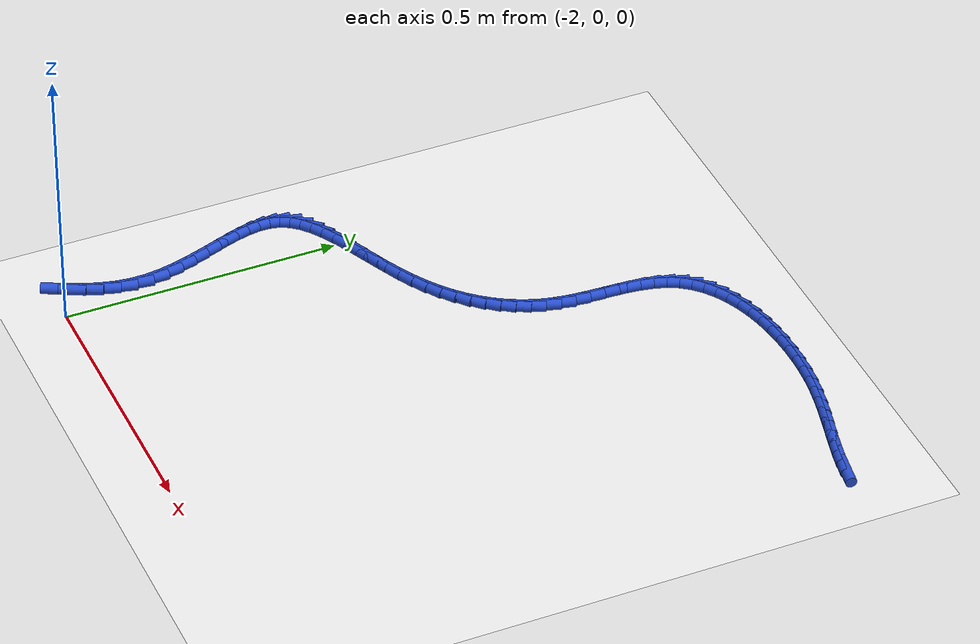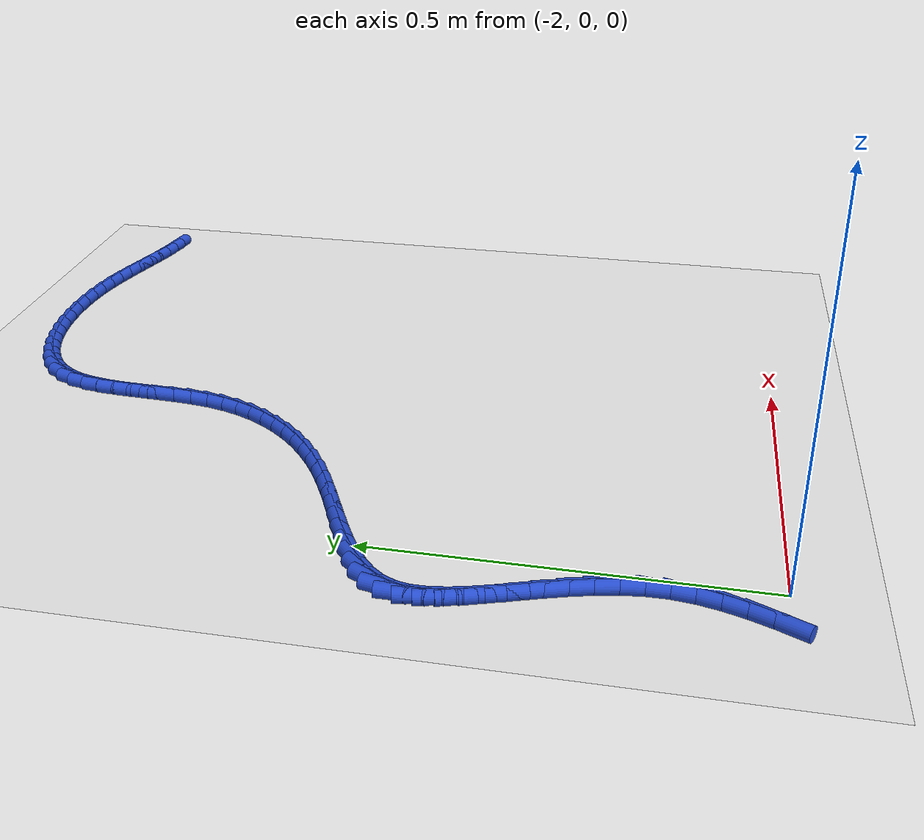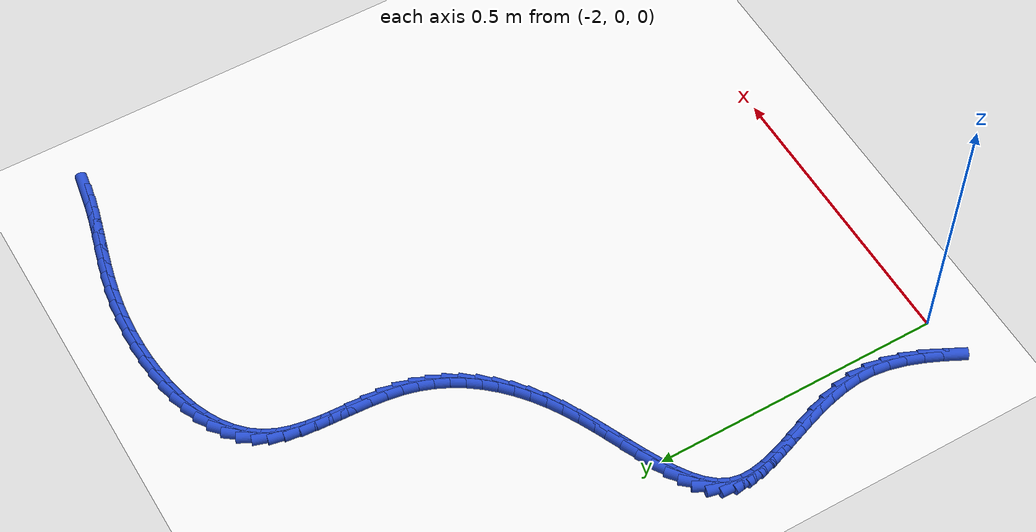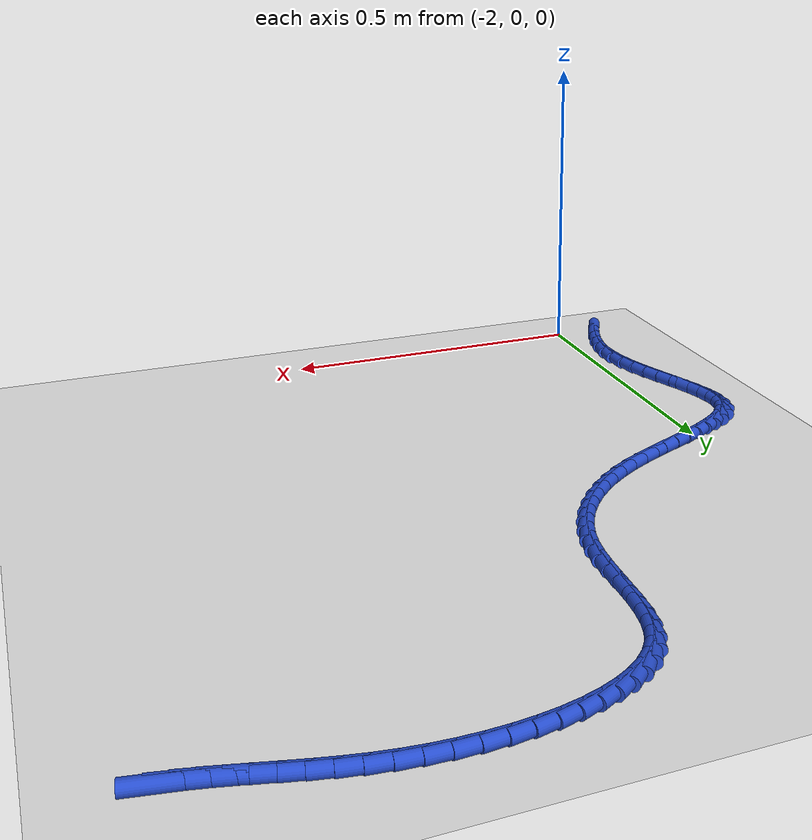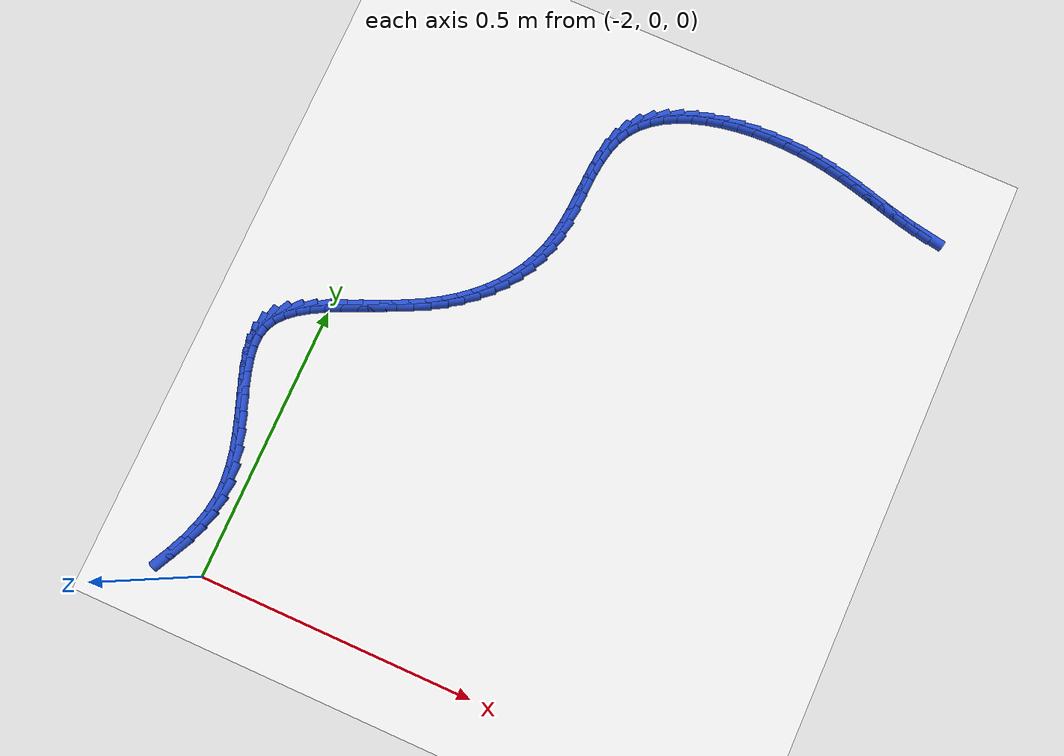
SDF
<sdf version="1.6">
 <world name="default">
  <model name="ground_plane">
   <static>1</static>
   <link name="link">
    <collision name="collision">
     <geometry><plane><normal>0 0 1</normal><size>100 100</size></plane></geometry>
     <surface><friction><ode><mu>100</mu><mu2>50</mu2></ode></friction></surface>
    </collision>
    <visual name="visual">
     <cast_shadows>0</cast_shadows>
     <geometry><plane><normal>0 0 1</normal><size>100 100</size></plane></geometry>
     <material>
      <script><uri>file://media/materials/scripts/gazebo.material</uri><name>Gazebo/WhiteGlow</name></script>
     </material>
    </visual>
   </link>
  </model>
  <model name="line">
   <link name="link_67">
    <pose>-1.1042383645350953 1.0488530100935698 0.01 0 1.57 -0.17428963430545558</pose>
    <collision name="collision">
     <geometry><cylinder><radius>0.01</radius><length>0.08</length></cylinder></geometry>
    </collision>
    <visual name="visual">
     <material>
      <script><name>Gazebo/Blue</name><uri>file://media/materials/scripts/gazebo.material</uri></script>
     </material>
     <geometry><cylinder><radius>0.01</radius><length>0.08</length></cylinder></geometry>
    </visual>
   </link>
   <link name="link_68">
    <pose>-1.1283796126108847 1.05310370778175 0.01 0 1.57 -0.21523904400579183</pose>
    <collision name="collision">
     <geometry><cylinder><radius>0.01</radius><length>0.08</length></cylinder></geometry>
    </collision>
    <visual name="visual">
     <material>
      <script><name>Gazebo/Blue</name><uri>file://media/materials/scripts/gazebo.material</uri></script>
     </material>
     <geometry><cylinder><radius>0.01</radius><length>0.08</length></cylinder></geometry>
    </visual>
   </link>
   <link name="link_69">
    <pose>-1.152446599690873 1.0583653689491557 0.01 0 1.57 -0.24287902745166387</pose>
    <collision name="collision">
     <geometry><cylinder><radius>0.01</radius><length>0.08</length></cylinder></geometry>
    </collision>
    <visual name="visual">
     <material>
      <script><name>Gazebo/Blue</name><uri>file://media/materials/scripts/gazebo.material</uri></script>
     </material>
     <geometry><cylinder><radius>0.01</radius><length>0.08</length></cylinder></geometry>
    </visual>
   </link>
   <link name="link_70">
    <pose>-1.1765841517220461 1.0643459375587025 0.01 0 1.57 -0.25727574184465374</pose>
    <collision name="collision">
     <geometry><cylinder><radius>0.01</radius><length>0.08</length></cylinder></geometry>
    </collision>
    <visual name="visual">
     <material>
      <script><name>Gazebo/Blue</name><uri>file://media/materials/scripts/gazebo.material</uri></script>
     </material>
     <geometry><cylinder><radius>0.01</radius><length>0.08</length></cylinder></geometry>
    </visual>
   </link>
   <link name="link_71">
    <pose>-1.2009370946513893 1.0707533575733053 0.01 0 1.57 -0.2587896713241554</pose>
    <collision name="collision">
     <geometry><cylinder><radius>0.01</radius><length>0.08</length></cylinder></geometry>
    </collision>
    <visual name="visual">
     <material>
      <script><name>Gazebo/Blue</name><uri>file://media/materials/scripts/gazebo.material</uri></script>
     </material>
     <geometry><cylinder><radius>0.01</radius><length>0.08</length></cylinder></geometry>
    </visual>
   </link>
   <link name="link_72">
    <pose>-1.2256502544258876 1.0772955729558782 0.01 0 1.57 -0.24797719030441243</pose>
    <collision name="collision">
     <geometry><cylinder><radius>0.01</radius><length>0.08</length></cylinder></geometry>
    </collision>
    <visual name="visual">
     <material>
      <script><name>Gazebo/Blue</name><uri>file://media/materials/scripts/gazebo.material</uri></script>
     </material>
     <geometry><cylinder><radius>0.01</radius><length>0.08</length></cylinder></geometry>
    </visual>
   </link>
   <link name="link_73">
    <pose>-1.2508684569925261 1.0836805276693373 0.01 0 1.57 -0.22555363552997876</pose>
    <collision name="collision">
     <geometry><cylinder><radius>0.01</radius><length>0.08</length></cylinder></geometry>
    </collision>
    <visual name="visual">
     <material>
      <script><name>Gazebo/Blue</name><uri>file://media/materials/scripts/gazebo.material</uri></script>
     </material>
     <geometry><cylinder><radius>0.01</radius><length>0.08</length></cylinder></geometry>
    </visual>
   </link>
   <link name="link_74">
    <pose>-1.276736528298291 1.0896161656765975 0.01 0 1.57 -0.19240354889719638</pose>
    <collision name="collision">
     <geometry><cylinder><radius>0.01</radius><length>0.08</length></cylinder></geometry>
    </collision>
    <visual name="visual">
     <material>
      <script><name>Gazebo/Blue</name><uri>file://media/materials/scripts/gazebo.material</uri></script>
     </material>
     <geometry><cylinder><radius>0.01</radius><length>0.08</length></cylinder></geometry>
    </visual>
   </link>
   <link name="link_75">
    <pose>-1.3033992942901667 1.0948104309405728 0.01 0 1.57 -0.14961987255452625</pose>
    <collision name="collision">
     <geometry><cylinder><radius>0.01</radius><length>0.08</length></cylinder></geometry>
    </collision>
    <visual name="visual">
     <material>
      <script><name>Gazebo/Blue</name><uri>file://media/materials/scripts/gazebo.material</uri></script>
     </material>
     <geometry><cylinder><radius>0.01</radius><length>0.08</length></cylinder></geometry>
    </visual>
   </link>
   <link name="link_76">
    <pose>-1.3310013963701117 1.098971349292782 0.01 0 1.57 -0.1007498563239477</pose>
    <collision name="collision">
     <geometry><cylinder><radius>0.01</radius><length>0.08</length></cylinder></geometry>
    </collision>
    <visual name="visual">
     <material>
      <script><name>Gazebo/Blue</name><uri>file://media/materials/scripts/gazebo.material</uri></script>
     </material>
     <geometry><cylinder><radius>0.01</radius><length>0.08</length></cylinder></geometry>
    </visual>
   </link>
   <link name="link_77">
    <pose>-1.3595693598524987 1.1018593456960684 0.01 0 1.57 -0.05186217491209351</pose>
    <collision name="collision">
     <geometry><cylinder><radius>0.01</radius><length>0.08</length></cylinder></geometry>
    </collision>
    <visual name="visual">
     <material>
      <script><name>Gazebo/Blue</name><uri>file://media/materials/scripts/gazebo.material</uri></script>
     </material>
     <geometry><cylinder><radius>0.01</radius><length>0.08</length></cylinder></geometry>
    </visual>
   </link>
   <link name="link_78">
    <pose>-1.3888089631166414 1.103377136151818 0.01 0 1.57 -0.0025106530164531646</pose>
    <collision name="collision">
     <geometry><cylinder><radius>0.01</radius><length>0.08</length></cylinder></geometry>
    </collision>
    <visual name="visual">
     <material>
      <script><name>Gazebo/Blue</name><uri>file://media/materials/scripts/gazebo.material</uri></script>
     </material>
     <geometry><cylinder><radius>0.01</radius><length>0.08</length></cylinder></geometry>
    </visual>
   </link>
   <link name="link_79">
    <pose>-1.4183720597675147 1.103451358985552 0.01 0 1.57 0.04880287275235447</pose>
    <collision name="collision">
     <geometry><cylinder><radius>0.01</radius><length>0.08</length></cylinder></geometry>
    </collision>
    <visual name="visual">
     <material>
      <script><name>Gazebo/Blue</name><uri>file://media/materials/scripts/gazebo.material</uri></script>
     </material>
     <geometry><cylinder><radius>0.01</radius><length>0.08</length></cylinder></geometry>
    </visual>
   </link>
   <link name="link_80">
    <pose>-1.4479105034100908 1.1020086525227895 0.01 0 1.57 0.10361967306458716</pose>
    <collision name="collision">
     <geometry><cylinder><radius>0.01</radius><length>0.08</length></cylinder></geometry>
    </collision>
    <visual name="visual">
     <material>
      <script><name>Gazebo/Blue</name><uri>file://media/materials/scripts/gazebo.material</uri></script>
     </material>
     <geometry><cylinder><radius>0.01</radius><length>0.08</length></cylinder></geometry>
    </visual>
   </link>
   <link name="link_81">
    <pose>-1.4770761476493453 1.0989756550890493 0.01 0 1.57 0.16363869534880243</pose>
    <collision name="collision">
     <geometry><cylinder><radius>0.01</radius><length>0.08</length></cylinder></geometry>
    </collision>
    <visual name="visual">
     <material>
      <script><name>Gazebo/Blue</name><uri>file://media/materials/scripts/gazebo.material</uri></script>
     </material>
     <geometry><cylinder><radius>0.01</radius><length>0.08</length></cylinder></geometry>
    </visual>
   </link>
   <link name="link_82">
    <pose>-1.5055208460902505 1.0942790050098519 0.01 0 1.57 0.2308257009730837</pose>
    <collision name="collision">
     <geometry><cylinder><radius>0.01</radius><length>0.08</length></cylinder></geometry>
    </collision>
    <visual name="visual">
     <material>
      <script><name>Gazebo/Blue</name><uri>file://media/materials/scripts/gazebo.material</uri></script>
     </material>
     <geometry><cylinder><radius>0.01</radius><length>0.08</length></cylinder></geometry>
    </visual>
   </link>
   <link name="link_83">
    <pose>-1.5328964523377795 1.0878453406107158 0.01 0 1.57 0.307512563078737</pose>
    <collision name="collision">
     <geometry><cylinder><radius>0.01</radius><length>0.08</length></cylinder></geometry>
    </collision>
    <visual name="visual">
     <material>
      <script><name>Gazebo/Blue</name><uri>file://media/materials/scripts/gazebo.material</uri></script>
     </material>
     <geometry><cylinder><radius>0.01</radius><length>0.08</length></cylinder></geometry>
    </visual>
   </link>
   <link name="link_84">
    <pose>-1.558854819996907 1.0796013002171616 0.01 0 1.57 0.39645827041986353</pose>
    <collision name="collision">
     <geometry><cylinder><radius>0.01</radius><length>0.08</length></cylinder></geometry>
    </collision>
    <visual name="visual">
     <material>
      <script><name>Gazebo/Blue</name><uri>file://media/materials/scripts/gazebo.material</uri></script>
     </material>
     <geometry><cylinder><radius>0.01</radius><length>0.08</length></cylinder></geometry>
    </visual>
   </link>
   <link name="link_85">
    <pose>-1.5830478026726058 1.0694735221547085 0.01 0 1.57 0.5007955728534997</pose>
    <collision name="collision">
     <geometry><cylinder><radius>0.01</radius><length>0.08</length></cylinder></geometry>
    </collision>
    <visual name="visual">
     <material>
      <script><name>Gazebo/Blue</name><uri>file://media/materials/scripts/gazebo.material</uri></script>
     </material>
     <geometry><cylinder><radius>0.01</radius><length>0.08</length></cylinder></geometry>
    </visual>
   </link>
   <link name="link_86">
    <pose>-1.6051272539698491 1.0573886447488754 0.01 0 1.57 0.6237054487606671</pose>
    <collision name="collision">
     <geometry><cylinder><radius>0.01</radius><length>0.08</length></cylinder></geometry>
    </collision>
    <visual name="visual">
     <material>
      <script><name>Gazebo/Blue</name><uri>file://media/materials/scripts/gazebo.material</uri></script>
     </material>
     <geometry><cylinder><radius>0.01</radius><length>0.08</length></cylinder></geometry>
    </visual>
   </link>
   <link name="link_87">
    <pose>-1.6247450274936113 1.0432733063251824 0.01 0 1.57 0.7675726295533489</pose>
    <collision name="collision">
     <geometry><cylinder><radius>0.01</radius><length>0.08</length></cylinder></geometry>
    </collision>
    <visual name="visual">
     <material>
      <script><name>Gazebo/Blue</name><uri>file://media/materials/scripts/gazebo.material</uri></script>
     </material>
     <geometry><cylinder><radius>0.01</radius><length>0.08</length></cylinder></geometry>
    </visual>
   </link>
   <link name="link_88">
    <pose>-1.6415529768488653 1.0270541452091486 0.01 0 1.57 0.9324387501027629</pose>
    <collision name="collision">
     <geometry><cylinder><radius>0.01</radius><length>0.08</length></cylinder></geometry>
    </collision>
    <visual name="visual">
     <material>
      <script><name>Gazebo/Blue</name><uri>file://media/materials/scripts/gazebo.material</uri></script>
     </material>
     <geometry><cylinder><radius>0.01</radius><length>0.08</length></cylinder></geometry>
    </visual>
   </link>
   <link name="link_89">
    <pose>-1.6552029556405852 1.0086577997262942 0.01 0 1.57 1.1119775000070906</pose>
    <collision name="collision">
     <geometry><cylinder><radius>0.01</radius><length>0.08</length></cylinder></geometry>
    </collision>
    <visual name="visual">
     <material>
      <script><name>Gazebo/Blue</name><uri>file://media/materials/scripts/gazebo.material</uri></script>
     </material>
     <geometry><cylinder><radius>0.01</radius><length>0.08</length></cylinder></geometry>
    </visual>
   </link>
   <link name="link_90">
    <pose>-1.6653922083407513 0.9880308849547086 0.01 0 1.57 1.2707455470443976</pose>
    <collision name="collision">
     <geometry><cylinder><radius>0.01</radius><length>0.08</length></cylinder></geometry>
    </collision>
    <visual name="visual">
     <material>
      <script><name>Gazebo/Blue</name><uri>file://media/materials/scripts/gazebo.material</uri></script>
     </material>
     <geometry><cylinder><radius>0.01</radius><length>0.08</length></cylinder></geometry>
    </visual>
   </link>
   <link name="link_91">
    <pose>-1.6724012274418916 0.9653767064074054 0.01 0 1.57 1.387139058297314</pose>
    <collision name="collision">
     <geometry><cylinder><radius>0.01</radius><length>0.08</length></cylinder></geometry>
    </collision>
    <visual name="visual">
     <material>
      <script><name>Gazebo/Blue</name><uri>file://media/materials/scripts/gazebo.material</uri></script>
     </material>
     <geometry><cylinder><radius>0.01</radius><length>0.08</length></cylinder></geometry>
    </visual>
   </link>
   <link name="link_92">
    <pose>-1.6769149858087204 0.9410765834765652 0.01 0 1.57 1.4651088340341443</pose>
    <collision name="collision">
     <geometry><cylinder><radius>0.01</radius><length>0.08</length></cylinder></geometry>
    </collision>
    <visual name="visual">
     <material>
      <script><name>Gazebo/Blue</name><uri>file://media/materials/scripts/gazebo.material</uri></script>
     </material>
     <geometry><cylinder><radius>0.01</radius><length>0.08</length></cylinder></geometry>
    </visual>
   </link>
   <link name="link_93">
    <pose>-1.6796265853830845 0.9155154132027641 0.01 0 1.57 1.5102537218789707</pose>
    <collision name="collision">
     <geometry><cylinder><radius>0.01</radius><length>0.08</length></cylinder></geometry>
    </collision>
    <visual name="visual">
     <material>
      <script><name>Gazebo/Blue</name><uri>file://media/materials/scripts/gazebo.material</uri></script>
     </material>
     <geometry><cylinder><radius>0.01</radius><length>0.08</length></cylinder></geometry>
    </visual>
   </link>
   <link name="link_94">
    <pose>-1.6812291281068312 0.8890780926265784 0.01 0 1.57 1.5267605478331683</pose>
    <collision name="collision">
     <geometry><cylinder><radius>0.01</radius><length>0.08</length></cylinder></geometry>
    </collision>
    <visual name="visual">
     <material>
      <script><name>Gazebo/Blue</name><uri>file://media/materials/scripts/gazebo.material</uri></script>
     </material>
     <geometry><cylinder><radius>0.01</radius><length>0.08</length></cylinder></geometry>
    </visual>
   </link>
   <link name="link_95">
    <pose>-1.6824157159218074 0.8621495187885849 0.01 0 1.57 1.5167067806565746</pose>
    <collision name="collision">
     <geometry><cylinder><radius>0.01</radius><length>0.08</length></cylinder></geometry>
    </collision>
    <visual name="visual">
     <material>
      <script><name>Gazebo/Blue</name><uri>file://media/materials/scripts/gazebo.material</uri></script>
     </material>
     <geometry><cylinder><radius>0.01</radius><length>0.08</length></cylinder></geometry>
    </visual>
   </link>
   <link name="link_96">
    <pose>-1.6838794507698611 0.8351145887293596 0.01 0 1.57 1.4800776946496819</pose>
    <collision name="collision">
     <geometry><cylinder><radius>0.01</radius><length>0.08</length></cylinder></geometry>
    </collision>
    <visual name="visual">
     <material>
      <script><name>Gazebo/Blue</name><uri>file://media/materials/scripts/gazebo.material</uri></script>
     </material>
     <geometry><cylinder><radius>0.01</radius><length>0.08</length></cylinder></geometry>
    </visual>
   </link>
   <link name="link_97">
    <pose>-1.6863134345928381 0.8083581994894784 0.01 0 1.57 1.4150398137562794</pose>
    <collision name="collision">
     <geometry><cylinder><radius>0.01</radius><length>0.08</length></cylinder></geometry>
    </collision>
    <visual name="visual">
     <material>
      <script><name>Gazebo/Blue</name><uri>file://media/materials/scripts/gazebo.material</uri></script>
     </material>
     <geometry><cylinder><radius>0.01</radius><length>0.08</length></cylinder></geometry>
    </visual>
   </link>
   <link name="link_98">
    <pose>-1.6904107693325863 0.782265248109518 0.01 0 1.57 1.3222461879575953</pose>
    <collision name="collision">
     <geometry><cylinder><radius>0.01</radius><length>0.08</length></cylinder></geometry>
    </collision>
    <visual name="visual">
     <material>
      <script><name>Gazebo/Blue</name><uri>file://media/materials/scripts/gazebo.material</uri></script>
     </material>
     <geometry><cylinder><radius>0.01</radius><length>0.08</length></cylinder></geometry>
    </visual>
   </link>
   <link name="link_99">
    <pose>-1.696777711091376 0.7571786073847002 0.01 0 1.57 1.2216126610356066</pose>
    <collision name="collision">
     <geometry><cylinder><radius>0.01</radius><length>0.08</length></cylinder></geometry>
    </collision>
    <visual name="visual">
     <material>
      <script><name>Gazebo/Blue</name><uri>file://media/materials/scripts/gazebo.material</uri></script>
     </material>
     <geometry><cylinder><radius>0.01</radius><length>0.08</length></cylinder></geometry>
    </visual>
   </link>
   <link name="link_100">
    <pose>-1.7055104701143942 0.7331943416005423 0.01 0 1.57 1.1222509827391267</pose>
    <collision name="collision">
     <geometry><cylinder><radius>0.01</radius><length>0.08</length></cylinder></geometry>
    </collision>
    <visual name="visual">
     <material>
      <script><name>Gazebo/Blue</name><uri>file://media/materials/scripts/gazebo.material</uri></script>
     </material>
     <geometry><cylinder><radius>0.01</radius><length>0.08</length></cylinder></geometry>
    </visual>
   </link>
   <link name="link_101">
    <pose>-1.7165196516778414 0.7103187017735131 0.01 0 1.57 1.0256795790060658</pose>
    <collision name="collision">
     <geometry><cylinder><radius>0.01</radius><length>0.08</length></cylinder></geometry>
    </collision>
    <visual name="visual">
     <material>
      <script><name>Gazebo/Blue</name><uri>file://media/materials/scripts/gazebo.material</uri></script>
     </material>
     <geometry><cylinder><radius>0.01</radius><length>0.08</length></cylinder></geometry>
    </visual>
   </link>
   <link name="link_102">
    <pose>-1.7297155947851501 0.6885578100720887 0.01 0 1.57 0.9331180591159318</pose>
    <collision name="collision">
     <geometry><cylinder><radius>0.01</radius><length>0.08</length></cylinder></geometry>
    </collision>
    <visual name="visual">
     <material>
      <script><name>Gazebo/Blue</name><uri>file://media/materials/scripts/gazebo.material</uri></script>
     </material>
     <geometry><cylinder><radius>0.01</radius><length>0.08</length></cylinder></geometry>
    </visual>
   </link>
   <link name="link_103">
    <pose>-1.745008638439756 0.667917788664745 0.01 0 1.57 0.8454274115639779</pose>
    <collision name="collision">
     <geometry><cylinder><radius>0.01</radius><length>0.08</length></cylinder></geometry>
    </collision>
    <visual name="visual">
     <material>
      <script><name>Gazebo/Blue</name><uri>file://media/materials/scripts/gazebo.material</uri></script>
     </material>
     <geometry><cylinder><radius>0.01</radius><length>0.08</length></cylinder></geometry>
    </visual>
   </link>
   <link name="link_104">
    <pose>-1.7623091216450915 0.6484047597199581 0.01 0 1.57 0.7631043013565872</pose>
    <collision name="collision">
     <geometry><cylinder><radius>0.01</radius><length>0.08</length></cylinder></geometry>
    </collision>
    <visual name="visual">
     <material>
      <script><name>Gazebo/Blue</name><uri>file://media/materials/scripts/gazebo.material</uri></script>
     </material>
     <geometry><cylinder><radius>0.01</radius><length>0.08</length></cylinder></geometry>
    </visual>
   </link>
   <link name="link_105">
    <pose>-1.78152738340459 0.6300248454062046 0.01 0 1.57 0.6863244239988429</pose>
    <collision name="collision">
     <geometry><cylinder><radius>0.01</radius><length>0.08</length></cylinder></geometry>
    </collision>
    <visual name="visual">
     <material>
      <script><name>Gazebo/Blue</name><uri>file://media/materials/scripts/gazebo.material</uri></script>
     </material>
     <geometry><cylinder><radius>0.01</radius><length>0.08</length></cylinder></geometry>
    </visual>
   </link>
   <link name="link_106">
    <pose>-1.8025737627216867 0.6127841678919608 0.01 0 1.57 0.6150115989685396</pose>
    <collision name="collision">
     <geometry><cylinder><radius>0.01</radius><length>0.08</length></cylinder></geometry>
    </collision>
    <visual name="visual">
     <material>
      <script><name>Gazebo/Blue</name><uri>file://media/materials/scripts/gazebo.material</uri></script>
     </material>
     <geometry><cylinder><radius>0.01</radius><length>0.08</length></cylinder></geometry>
    </visual>
   </link>
   <link name="link_107">
    <pose>-1.8253585985998129 0.5966888493457019 0.01 0 1.57 0.5489133650635474</pose>
    <collision name="collision">
     <geometry><cylinder><radius>0.01</radius><length>0.08</length></cylinder></geometry>
    </collision>
    <visual name="visual">
     <material>
      <script><name>Gazebo/Blue</name><uri>file://media/materials/scripts/gazebo.material</uri></script>
     </material>
     <geometry><cylinder><radius>0.01</radius><length>0.08</length></cylinder></geometry>
    </visual>
   </link>
   <link name="link_108">
    <pose>-1.849792193005085 0.5817449915681433 0.01 0 1.57 0.49101481316310697</pose>
    <collision name="collision">
     <geometry><cylinder><radius>0.01</radius><length>0.08</length></cylinder></geometry>
    </collision>
    <visual name="visual">
     <material>
      <script><name>Gazebo/Blue</name><uri>file://media/materials/scripts/gazebo.material</uri></script>
     </material>
     <geometry><cylinder><radius>0.01</radius><length>0.08</length></cylinder></geometry>
    </visual>
   </link>
   <link name="link_109">
    <pose>-1.87568178911386 0.5679020217163574 0.01 0 1.57 0.45046202257539814</pose>
    <collision name="collision">
     <geometry><cylinder><radius>0.01</radius><length>0.08</length></cylinder></geometry>
    </collision>
    <visual name="visual">
     <material>
      <script><name>Gazebo/Blue</name><uri>file://media/materials/scripts/gazebo.material</uri></script>
     </material>
     <geometry><cylinder><radius>0.01</radius><length>0.08</length></cylinder></geometry>
    </visual>
   </link>
   <link name="link_110">
    <pose>-1.9025065003591168 0.55492892007512 0.01 0 1.57 0.4271875500430103</pose>
    <collision name="collision">
     <geometry><cylinder><radius>0.01</radius><length>0.08</length></cylinder></geometry>
    </collision>
    <visual name="visual">
     <material>
      <script><name>Gazebo/Blue</name><uri>file://media/materials/scripts/gazebo.material</uri></script>
     </material>
     <geometry><cylinder><radius>0.01</radius><length>0.08</length></cylinder></geometry>
    </visual>
   </link>
   <link name="link_111">
    <pose>-1.9296802804238797 0.542558833929254 0.01 0 1.57 0.4201450552493722</pose>
    <collision name="collision">
     <geometry><cylinder><radius>0.01</radius><length>0.08</length></cylinder></geometry>
    </collision>
    <visual name="visual">
     <material>
      <script><name>Gazebo/Blue</name><uri>file://media/materials/scripts/gazebo.material</uri></script>
     </material>
     <geometry><cylinder><radius>0.01</radius><length>0.08</length></cylinder></geometry>
    </visual>
   </link>
   <link name="link_112">
    <pose>-1.9566170829911742 0.5305249105635832 0.01 0 1.57 0.42962929537691974</pose>
    <collision name="collision">
     <geometry><cylinder><radius>0.01</radius><length>0.08</length></cylinder></geometry>
    </collision>
    <visual name="visual">
     <material>
      <script><name>Gazebo/Blue</name><uri>file://media/materials/scripts/gazebo.material</uri></script>
     </material>
     <geometry><cylinder><radius>0.01</radius><length>0.08</length></cylinder></geometry>
    </visual>
   </link>
   <link name="link_113">
    <pose>-1.9827308617440225 0.5185602972629302 0.01 0 1.57 0.4574695651345775</pose>
    <collision name="collision">
     <geometry><cylinder><radius>0.01</radius><length>0.08</length></cylinder></geometry>
    </collision>
    <visual name="visual">
     <material>
      <script><name>Gazebo/Blue</name><uri>file://media/materials/scripts/gazebo.material</uri></script>
     </material>
     <geometry><cylinder><radius>0.01</radius><length>0.08</length></cylinder></geometry>
    </visual>
   </link>
   <link name="link_114">
    <pose>-2.007435570365451 0.5063981413121184 0.01 0 1.57 0.5074386706883938</pose>
    <collision name="collision">
     <geometry><cylinder><radius>0.01</radius><length>0.08</length></cylinder></geometry>
    </collision>
    <visual name="visual">
     <material>
      <script><name>Gazebo/Blue</name><uri>file://media/materials/scripts/gazebo.material</uri></script>
     </material>
     <geometry><cylinder><radius>0.01</radius><length>0.08</length></cylinder></geometry>
    </visual>
   </link>
   <link name="link_115">
    <pose>-2.030145162538483 0.49377158999597087 0.01 0 1.57 0.58589630635222</pose>
    <collision name="collision">
     <geometry><cylinder><radius>0.01</radius><length>0.08</length></cylinder></geometry>
    </collision>
    <visual name="visual">
     <material>
      <script><name>Gazebo/Blue</name><uri>file://media/materials/scripts/gazebo.material</uri></script>
     </material>
     <geometry><cylinder><radius>0.01</radius><length>0.08</length></cylinder></geometry>
    </visual>
   </link>
   <link name="link_116">
    <pose>-2.050273591946144 0.480413790599311 0.01 0 1.57 0.7023977280361631</pose>
    <collision name="collision">
     <geometry><cylinder><radius>0.01</radius><length>0.08</length></cylinder></geometry>
    </collision>
    <visual name="visual">
     <material>
      <script><name>Gazebo/Blue</name><uri>file://media/materials/scripts/gazebo.material</uri></script>
     </material>
     <geometry><cylinder><radius>0.01</radius><length>0.08</length></cylinder></geometry>
    </visual>
   </link>
   <link name="link_117">
    <pose>-2.0672348122714572 0.4660578904069619 0.01 0 1.57 0.8689006513348433</pose>
    <collision name="collision">
     <geometry><cylinder><radius>0.01</radius><length>0.08</length></cylinder></geometry>
    </collision>
    <visual name="visual">
     <material>
      <script><name>Gazebo/Blue</name><uri>file://media/materials/scripts/gazebo.material</uri></script>
     </material>
     <geometry><cylinder><radius>0.01</radius><length>0.08</length></cylinder></geometry>
    </visual>
   </link>
   <link name="link_118">
    <pose>-2.0804427771974465 0.45043703670374646 0.01 0 1.57 1.093607443347433</pose>
    <collision name="collision">
     <geometry><cylinder><radius>0.01</radius><length>0.08</length></cylinder></geometry>
    </collision>
    <visual name="visual">
     <material>
      <script><name>Gazebo/Blue</name><uri>file://media/materials/scripts/gazebo.material</uri></script>
     </material>
     <geometry><cylinder><radius>0.01</radius><length>0.08</length></cylinder></geometry>
    </visual>
   </link>
   <link name="link_119">
    <pose>-2.0893114404071387 0.43328437677448833 0.01 0 1.57 1.353847821729768</pose>
    <collision name="collision">
     <geometry><cylinder><radius>0.01</radius><length>0.08</length></cylinder></geometry>
    </collision>
    <visual name="visual">
     <material>
      <script><name>Gazebo/Blue</name><uri>file://media/materials/scripts/gazebo.material</uri></script>
     </material>
     <geometry><cylinder><radius>0.01</radius><length>0.08</length></cylinder></geometry>
    </visual>
   </link>
   <link name="link_120">
    <pose>-2.0934735546051293 0.4144015112249563 0.01 0 1.57 -1.5699843504026911</pose>
    <collision name="collision">
     <geometry><cylinder><radius>0.01</radius><length>0.08</length></cylinder></geometry>
    </collision>
    <visual name="visual">
     <material>
      <script><name>Gazebo/Blue</name><uri>file://media/materials/scripts/gazebo.material</uri></script>
     </material>
     <geometry><cylinder><radius>0.01</radius><length>0.08</length></cylinder></geometry>
    </visual>
   </link>
   <link name="link_121">
    <pose>-2.0934568835422844 0.39387005324031565 0.01 0 1.57 -1.4159245962872729</pose>
    <collision name="collision">
     <geometry><cylinder><radius>0.01</radius><length>0.08</length></cylinder></geometry>
    </collision>
    <visual name="visual">
     <material>
      <script><name>Gazebo/Blue</name><uri>file://media/materials/scripts/gazebo.material</uri></script>
     </material>
     <geometry><cylinder><radius>0.01</radius><length>0.08</length></cylinder></geometry>
    </visual>
   </link>
   <link name="link_122">
    <pose>-2.0900180091125615 0.37184320390258263 0.01 0 1.57 -1.3152844443918095</pose>
    <collision name="collision">
     <geometry><cylinder><radius>0.01</radius><length>0.08</length></cylinder></geometry>
    </collision>
    <visual name="visual">
     <material>
      <script><name>Gazebo/Blue</name><uri>file://media/materials/scripts/gazebo.material</uri></script>
     </material>
     <geometry><cylinder><radius>0.01</radius><length>0.08</length></cylinder></geometry>
    </visual>
   </link>
   <link name="link_123">
    <pose>-2.0839135133029143 0.3484741643228673 0.01 0 1.57 -1.2553798555123714</pose>
    <collision name="collision">
     <geometry><cylinder><radius>0.01</radius><length>0.08</length></cylinder></geometry>
    </collision>
    <visual name="visual">
     <material>
      <script><name>Gazebo/Blue</name><uri>file://media/materials/scripts/gazebo.material</uri></script>
     </material>
     <geometry><cylinder><radius>0.01</radius><length>0.08</length></cylinder></geometry>
    </visual>
   </link>
   <link name="link_124">
    <pose>-2.075899978100292 0.32391613561227883 0.01 0 1.57 -1.2268944485420152</pose>
    <collision name="collision">
     <geometry><cylinder><radius>0.01</radius><length>0.08</length></cylinder></geometry>
    </collision>
    <visual name="visual">
     <material>
      <script><name>Gazebo/Blue</name><uri>file://media/materials/scripts/gazebo.material</uri></script>
     </material>
     <geometry><cylinder><radius>0.01</radius><length>0.08</length></cylinder></geometry>
    </visual>
   </link>
   <link name="link_125">
    <pose>-2.066733985491649 0.2983223188819274 0.01 0 1.57 -1.224225904944185</pose>
    <collision name="collision">
     <geometry><cylinder><radius>0.01</radius><length>0.08</length></cylinder></geometry>
    </collision>
    <visual name="visual">
     <material>
      <script><name>Gazebo/Blue</name><uri>file://media/materials/scripts/gazebo.material</uri></script>
     </material>
     <geometry><cylinder><radius>0.01</radius><length>0.08</length></cylinder></geometry>
    </visual>
   </link>
   <link name="link_126">
    <pose>-2.057172117463934 0.27184591524292273 0.01 0 1.57 -1.2446667937695135</pose>
    <collision name="collision">
     <geometry><cylinder><radius>0.01</radius><length>0.08</length></cylinder></geometry>
    </collision>
    <visual name="visual">
     <material>
      <script><name>Gazebo/Blue</name><uri>file://media/materials/scripts/gazebo.material</uri></script>
     </material>
     <geometry><cylinder><radius>0.01</radius><length>0.08</length></cylinder></geometry>
    </visual>
   </link>
   <link name="link_127">
    <pose>-2.047970956004101 0.24464012580637465 0.01 0 1.57 -1.2876393451434307</pose>
    <collision name="collision">
     <geometry><cylinder><radius>0.01</radius><length>0.08</length></cylinder></geometry>
    </collision>
    <visual name="visual">
     <material>
      <script><name>Gazebo/Blue</name><uri>file://media/materials/scripts/gazebo.material</uri></script>
     </material>
     <geometry><cylinder><radius>0.01</radius><length>0.08</length></cylinder></geometry>
    </visual>
   </link>
   <link name="link_128">
    <pose>-2.0398870830991007 0.21685815168339279 0.01 0 1.57 -1.3540799251949462</pose>
    <collision name="collision">
     <geometry><cylinder><radius>0.01</radius><length>0.08</length></cylinder></geometry>
    </collision>
    <visual name="visual">
     <material>
      <script><name>Gazebo/Blue</name><uri>file://media/materials/scripts/gazebo.material</uri></script>
     </material>
     <geometry><cylinder><radius>0.01</radius><length>0.08</length></cylinder></geometry>
    </visual>
   </link>
   <link name="link_129">
    <pose>-2.0336770807358846 0.18865319398508715 0.01 0 1.57 -1.4457426536506794</pose>
    <collision name="collision">
     <geometry><cylinder><radius>0.01</radius><length>0.08</length></cylinder></geometry>
    </collision>
    <visual name="visual">
     <material>
      <script><name>Gazebo/Blue</name><uri>file://media/materials/scripts/gazebo.material</uri></script>
     </material>
     <geometry><cylinder><radius>0.01</radius><length>0.08</length></cylinder></geometry>
    </visual>
   </link>
   <link name="link_130">
    <pose>-2.0300975309014047 0.16017845382256743 0.01 0 1.57 -1.5640630805072957</pose>
    <collision name="collision">
     <geometry><cylinder><radius>0.01</radius><length>0.08</length></cylinder></geometry>
    </collision>
    <visual name="visual">
     <material>
      <script><name>Gazebo/Blue</name><uri>file://media/materials/scripts/gazebo.material</uri></script>
     </material>
     <geometry><cylinder><radius>0.01</radius><length>0.08</length></cylinder></geometry>
    </visual>
   </link>
   <link name="link_131">
    <pose>-2.029905015582613 0.1315871323069435 0.01 0 1.57 1.4409018151135338</pose>
    <collision name="collision">
     <geometry><cylinder><radius>0.01</radius><length>0.08</length></cylinder></geometry>
    </collision>
    <visual name="visual">
     <material>
      <script><name>Gazebo/Blue</name><uri>file://media/materials/scripts/gazebo.material</uri></script>
     </material>
     <geometry><cylinder><radius>0.01</radius><length>0.08</length></cylinder></geometry>
    </visual>
   </link>
   <link name="link_132">
    <pose>-2.0336359162464523 0.10302631273758886 0.01 0 1.57 1.3211197001781416</pose>
    <collision name="collision">
     <geometry><cylinder><radius>0.01</radius><length>0.08</length></cylinder></geometry>
    </collision>
    <visual name="visual">
     <material>
      <script><name>Gazebo/Blue</name><uri>file://media/materials/scripts/gazebo.material</uri></script>
     </material>
     <geometry><cylinder><radius>0.01</radius><length>0.08</length></cylinder></geometry>
    </visual>
   </link>
   <link name="link_133">
    <pose>-2.0408802742431877 0.07461678632940771 0.01 0 1.57 1.2264470802314729</pose>
    <collision name="collision">
     <geometry><cylinder><radius>0.01</radius><length>0.08</length></cylinder></geometry>
    </collision>
    <visual name="visual">
     <material>
      <script><name>Gazebo/Blue</name><uri>file://media/materials/scripts/gazebo.material</uri></script>
     </material>
     <geometry><cylinder><radius>0.01</radius><length>0.08</length></cylinder></geometry>
    </visual>
   </link>
   <link name="link_134">
    <pose>-2.0509739603708304 0.04647228269914175 0.01 0 1.57 1.1544216789153472</pose>
    <collision name="collision">
     <geometry><cylinder><radius>0.01</radius><length>0.08</length></cylinder></geometry>
    </collision>
    <visual name="visual">
     <material>
      <script><name>Gazebo/Blue</name><uri>file://media/materials/scripts/gazebo.material</uri></script>
     </material>
     <geometry><cylinder><radius>0.01</radius><length>0.08</length></cylinder></geometry>
    </visual>
   </link>
   <link name="link_135">
    <pose>-2.0632528421886875 0.018706531373550613 0.01 0 1.57 1.102369859617073</pose>
    <collision name="collision">
     <geometry><cylinder><radius>0.01</radius><length>0.08</length></cylinder></geometry>
    </collision>
    <visual name="visual">
     <material>
      <script><name>Gazebo/Blue</name><uri>file://media/materials/scripts/gazebo.material</uri></script>
     </material>
     <geometry><cylinder><radius>0.01</radius><length>0.08</length></cylinder></geometry>
    </visual>
   </link>
  </model>
 </world>
</sdf>
